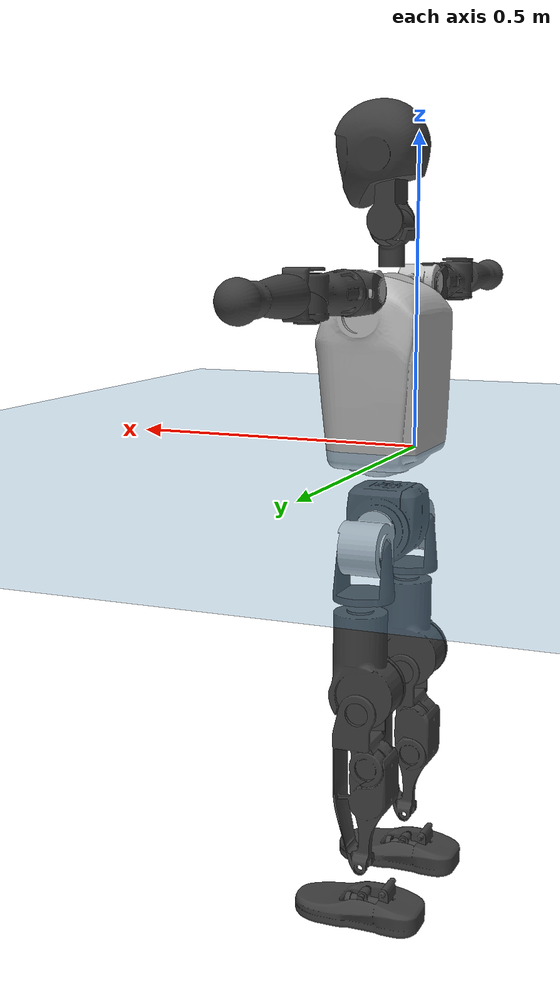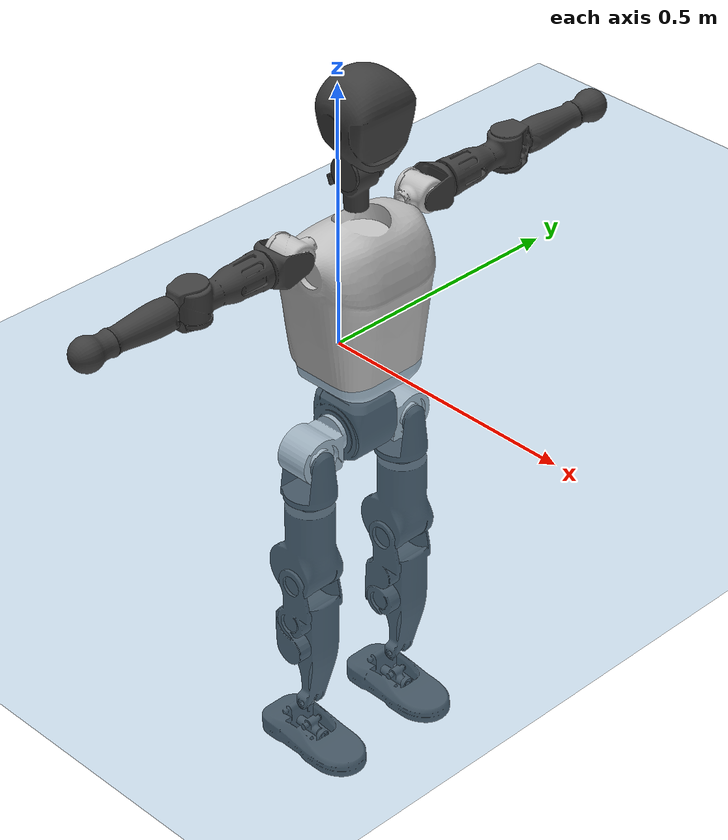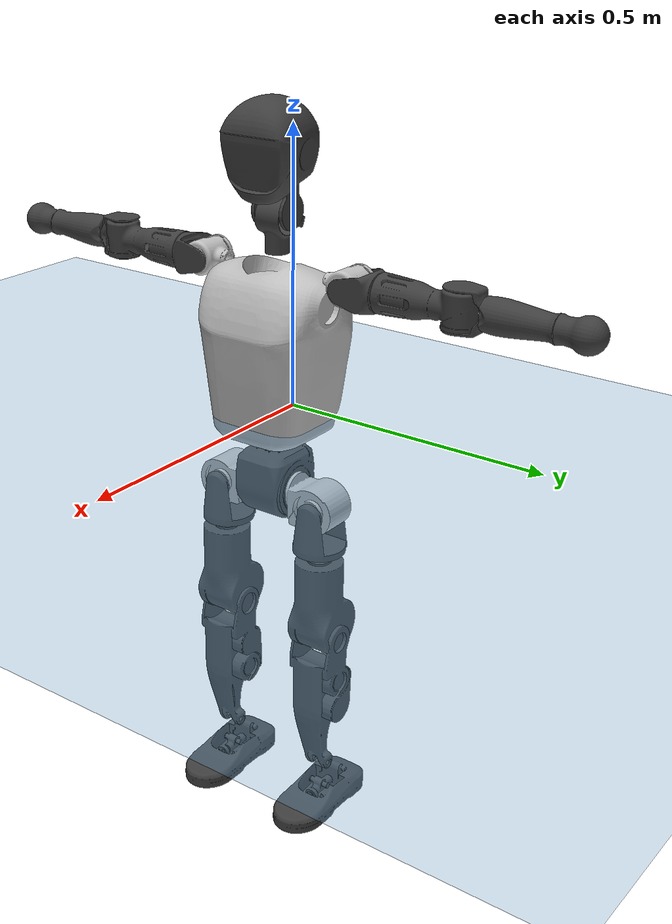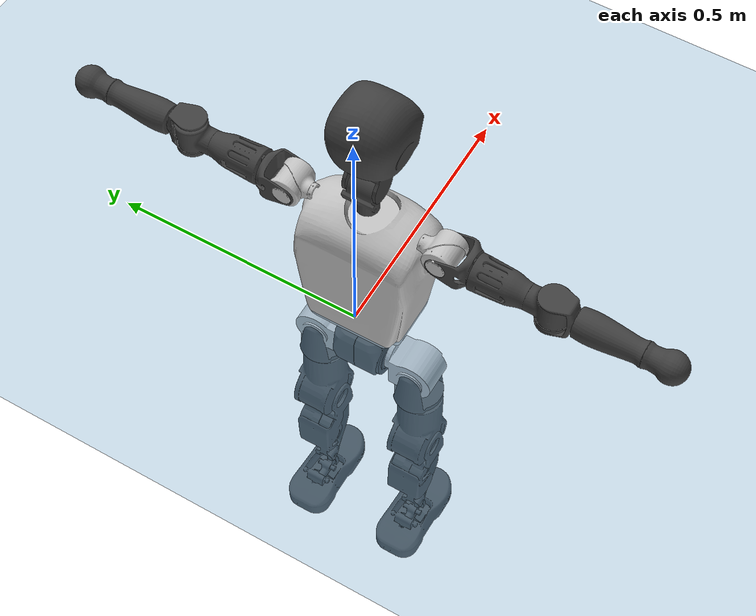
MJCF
<mujoco model="T1">
  <compiler angle="radian" assetdir="assets" balanceinertia="true" inertiafromgeom="false"/>

  <option timestep="0.005" density="1.2" viscosity="2e-05"/>

  <size nkey="1"/>

  <visual>
    <quality shadowsize="8192"/>
    <map shadowclip="0.5"/>
  </visual>

  <default>
    <default class="/">
      <joint armature="0.01" damping="0.01" frictionloss="0.1"/>
      <geom contype="0" conaffinity="0" group="1" solref="-1000 -80"/>
      <site size="0.01 0.005 0.005" group="5"/>
      <general forcelimited="true" biastype="affine" gainprm="25" biasprm="0 -25 -0.6"/>
      <default class="t1">
        <geom rgba="0.25 0.25 0.25 1"/>
        <default class="visual">
          <geom type="mesh" group="2"/>
        </default>
        <default class="collision">
          <geom group="3"/>
        </default>
        <default class="foot">
          <geom size="0.1115 0.05 0.015" type="box" condim="6" group="4" priority="1" solimp="0.015 1 0.015"/>
        </default>
        <default class="reward_collision_sphere">
          <geom group="5" rgba="1 0 0 1"/>
        </default>
      </default>
    </default>
  </default>

  <asset>
    <texture type="skybox" colorspace="auto" name="//unnamed_texture_0" builtin="gradient" rgb1="0.95 0.95 0.95" rgb2="0.95 0.95 0.95" width="100" height="600"/>
    <texture type="2d" colorspace="auto" name="texplane" builtin="checker" rgb1="0.345 0.575 0.748" rgb2="0.345 0.575 0.748" markrgb="1 1 1" width="512" height="512"/>
    <material name="MatPlane" class="/" texture="texplane" texuniform="true" texrepeat="2 2" specular="0.9"/>
    <mesh name="Trunk" class="/" file="Trunk.stl"/>
    <mesh name="H1" class="/" file="H1.stl"/>
    <mesh name="H2" class="/" file="H2.stl"/>
    <mesh name="AL1" class="/" file="AL1.stl"/>
    <mesh name="AL2" class="/" file="AL2.stl"/>
    <mesh name="AL3" class="/" file="AL3.stl"/>
    <mesh name="left_hand_link" class="/" file="left_hand_link.stl"/>
    <mesh name="AR1" class="/" file="AR1.stl"/>
    <mesh name="AR2" class="/" file="AR2.stl"/>
    <mesh name="AR3" class="/" file="AR3.stl"/>
    <mesh name="right_hand_link" class="/" file="right_hand_link.stl"/>
    <mesh name="Waist" class="/" file="Waist.stl"/>
    <mesh name="Hip_Pitch_Left" class="/" file="Hip_Pitch_Left.stl"/>
    <mesh name="Hip_Roll_Left" class="/" file="Hip_Roll_Left.stl"/>
    <mesh name="Hip_Yaw_Left" class="/" file="Hip_Yaw_Left.stl"/>
    <mesh name="Shank_Left" class="/" file="Shank_Left.stl"/>
    <mesh name="Ankle_Cross_Left" class="/" file="Ankle_Cross_Left.stl"/>
    <mesh name="left_foot_link" class="/" file="left_foot_link.stl"/>
    <mesh name="Hip_Pitch_Right" class="/" file="Hip_Pitch_Right.stl"/>
    <mesh name="Hip_Roll_Right" class="/" file="Hip_Roll_Right.stl"/>
    <mesh name="Hip_Yaw_Right" class="/" file="Hip_Yaw_Right.stl"/>
    <mesh name="Shank_Right" class="/" file="Shank_Right.stl"/>
    <mesh name="Ankle_Cross_Right" class="/" file="Ankle_Cross_Right.stl"/>
    <mesh name="right_foot_link" class="/" file="right_foot_link.stl"/>
  </asset>

  <worldbody>
    <geom name="floor" class="/" size="100 100 0.125" type="plane" group="0" material="MatPlane"/>
    <light name="toplight_shadow" class="/" pos="0 0 5" dir="0.0990148 0.0990148 -0.990148" type="directional" ambient="0.04 0.04 0.04" diffuse="0.55 0.55 0.55" specular="0.12 0.12 0.12"/>
    <light name="toplight_fill" class="/" pos="0 0 5" dir="0.0990148 0.0990148 -0.990148" type="directional" castshadow="false" ambient="0.04 0.04 0.04" diffuse="0.3 0.3 0.3" specular="0.08 0.08 0.08"/>
    <body name="trunk" childclass="t1" pos="0.000300027 -0.00197354 -0.000394572" quat="0.999999 0.000548526 -0.00110985 -0.000114579">
      <inertial pos="0.0382968 -0.00362734 0.123525" quat="0.999943 0.00225571 -0.0103062 0.00162925" mass="10.4292" diaginertia="0.0223441 0.0679712 0.129078"/>
      <joint name="//unnamed_joint_0" type="free" armature="0" damping="0" frictionloss="0"/>
      <geom name="//unnamed_geom_1" class="visual" rgba="0.76 0.76 0.76 1" mesh="Trunk"/>
      <geom name="//unnamed_geom_2" class="collision" size="0.0731766 0.0975688 0.146353" pos="0.0452361 0 0.142905" type="box"/>
      <geom name="//unnamed_geom_3" class="reward_collision_sphere" size="0.112204" pos="0.0452361 0 0.119088"/>
      <geom name="//unnamed_geom_4" class="reward_collision_sphere" size="0.0146353" pos="0.0452361 0.0834914 0"/>
      <geom name="//unnamed_geom_5" class="reward_collision_sphere" size="0.0146353" pos="0.0452361 -0.0834914 0"/>
      <geom name="//unnamed_geom_6" class="reward_collision_sphere" size="0.0146353" pos="0.0452361 0.105101 0.214358"/>
      <geom name="//unnamed_geom_7" class="reward_collision_sphere" size="0.0146353" pos="0.0452361 -0.105101 0.214358"/>
      <site name="imu" pos="0.0136097 -0.00240899 -0.0136351" size="0.00975688"/>
      <camera name="track" pos="0 -1.9645 0" quat="0.707107 0.707107 0 0" mode="trackcom"/>
      <camera name="ego_camera" pos="0.09198 0 0.500169" quat="-0.5 -0.5 0.5 0.5"/>
      <body name="H1" pos="0.0442838 0.00150033 0.289974" quat="1 -0.000500421 -6.62293e-05 0.000232683">
        <inertial pos="-0.00380699 0.000747247 0.0700392" quat="0.769723 -0.014235 -0.00707673 0.638181" mass="0.417126" diaginertia="5.94832e-05 0.000201993 0.000339476"/>
        <joint name="AAHead_yaw" pos="0 0 0" axis="0.0107337 -0.00541641 0.999928" stiffness="0.00693408" range="-1.57382 1.58906" armature="0.00851617" damping="0.0106139" frictionloss="0.0972107"/>
        <geom name="//unnamed_geom_8" class="visual" mesh="H1"/>
        <body name="H2" pos="0.00170772 0.0022391 0.0725805" quat="1 0.000375307 -3.88935e-05 0.000229795">
          <inertial pos="0.00727948 0.00347919 0.118086" quat="0.988543 0.102472 -0.0754136 -0.0812111" mass="0.591835" diaginertia="0.000517919 0.00178267 0.0041528"/>
          <joint name="Head_pitch" pos="0 0 0" axis="0.00180984 -0.999976 0.00670392" stiffness="0.000800014" range="-1.22676 0.34874" armature="0.00858307" damping="0.0108409" frictionloss="0.106092"/>
          <geom name="//unnamed_geom_9" class="visual" mesh="H2"/>
          <geom name="//unnamed_geom_10" class="collision" size="0.0780551" pos="0.00753935 0 0.130997"/>
          <geom name="//unnamed_geom_11" class="reward_collision_sphere" size="0.0878119" pos="0.0150787 0 0.119088"/>
        </body>
      </body>
      <body name="AL1" pos="0.043442 0.105298 0.258794" quat="1 -2.35196e-05 0.000244127 0.000111716">
        <inertial pos="-0.00302733 0.0428327 1.12108e-05" quat="0.505275 0.499227 -0.501644 0.493784" mass="0.494959" diaginertia="0.000339289 0.00119998 0.000684614"/>
        <joint name="Left_Shoulder_Pitch" pos="0 0 0" axis="0.00056405 0.999927 -0.0120847" stiffness="0.00246546" range="-3.29586 1.18223" armature="0.0102027" damping="0.0100326" frictionloss="0.0999821"/>
        <geom name="//unnamed_geom_12" class="visual" rgba="0.76 0.76 0.76 1" mesh="AL1"/>
        <body name="AL2" pos="-4.76255e-05 0.0458777 -0.00285074" quat="1 0.000130325 8.92161e-05 0.000189146">
          <inertial pos="0.00484911 0.0352729 -0.00304036" quat="0.488465 0.509345 -0.498857 0.503101" mass="0.14517" diaginertia="9.73751e-05 0.000315988 0.000415467"/>
          <joint name="Left_Shoulder_Roll" pos="0 0 0" axis="-0.999959 -0.00908232 -0.000615378" range="-1.5751 1.71837" armature="0.00965031" damping="0.00475142" frictionloss="0.0951454"/>
          <geom name="//unnamed_geom_13" class="visual" mesh="AL2"/>
          <body name="AL3" pos="0.00125852 0.0604517 0.0019162" quat="1 -2.01065e-05 3.89086e-07 -1.17457e-05">
            <inertial pos="-0.00303117 0.0836381 -0.000772885" quat="0.703999 0.710114 0.00613141 -0.00925083" mass="0.96435" diaginertia="0.00324378 0.0117823 0.00147009"/>
            <joint name="Left_Elbow_Pitch" pos="0 0 0" axis="-0.0020051 -0.999998 0.000710723" range="-2.28285 2.28871" armature="0.00963983" damping="0.0186138" frictionloss="0.108313"/>
            <geom name="//unnamed_geom_14" class="visual" mesh="AL3"/>
            <geom name="//unnamed_geom_15" class="collision" size="0.0292706 0.0731766" pos="0 0.0491126 0" quat="0.707105 0.707108 0 0" type="cylinder"/>
            <geom name="//unnamed_geom_16" class="reward_collision_sphere" size="0.0351248"/>
            <body name="left_hand_link" pos="0.00298079 0.147444 0.0033292" quat="1 -0.000145171 -0.000177653 0.000390624">
              <inertial pos="0.00241634 0.10494 -0.00229435" quat="0.708145 0.706063 0.00115591 0.00222098" mass="0.303564" diaginertia="0.00198724 0.00756317 0.000531835"/>
              <joint name="Left_Elbow_Yaw" pos="0 0 0" axis="0.00753679 0.00369284 0.999965" range="-2.42899 0.00819539" armature="0.0111109" damping="0.0209747" frictionloss="0.0980018"/>
              <geom name="//unnamed_geom_17" class="visual" mesh="left_hand_link"/>
              <geom name="//unnamed_geom_18" class="collision" size="0.0292706 0.0853727" pos="0 0.127693 0" quat="0.707105 0.707108 0 0" type="cylinder"/>
              <geom name="//unnamed_geom_19" class="reward_collision_sphere" size="0.0487844"/>
              <geom name="//unnamed_geom_20" class="reward_collision_sphere" size="0.0341491" pos="0 0.108048 0"/>
              <geom name="//unnamed_geom_21" class="reward_collision_sphere" size="0.0341491" pos="0 0.211184 0"/>
            </body>
          </body>
        </body>
      </body>
      <body name="AR1" pos="0.0447623 -0.102296 0.260468" quat="1 0.000407805 0.000365952 -0.000708327">
        <inertial pos="0.000261499 -0.0459024 0.00152412" quat="0.503958 0.494113 -0.505612 0.49622" mass="0.50492" diaginertia="0.000330841 0.00122906 0.000723208"/>
        <joint name="Right_Shoulder_Pitch" pos="0 0 0" axis="-4.17083e-06 -1 3.48839e-06" stiffness="0.00100451" range="-1.17543 3.31699" armature="0.00947985" damping="0.0154566" frictionloss="0.0899046"/>
        <geom name="//unnamed_geom_22" class="visual" rgba="0.76 0.76 0.76 1" mesh="AR1"/>
        <body name="AR2" pos="0.000162903 -0.0469493 -0.00255375" quat="0.999999 9.41023e-05 -0.00150861 0.000135607">
          <inertial pos="0.00165539 -0.0365525 0.000505154" quat="0.516807 0.476579 -0.512122 0.493471" mass="0.143677" diaginertia="9.42485e-05 0.000313146 0.000406438"/>
          <joint name="Right_Shoulder_Roll" pos="0 0 0" axis="-0.999994 0.00287773 -0.00200056" range="-1.77278 1.53634" armature="0.00982325" damping="0" frictionloss="0.102801"/>
          <geom name="//unnamed_geom_23" class="visual" mesh="AR2"/>
          <body name="AR3" pos="-0.00328124 -0.0591497 0.000440899" quat="0.999999 0.00111716 0.000654818 0.00043084">
            <inertial pos="0.00144674 -0.0844337 0.00160205" quat="0.706659 0.707544 0.000901989 -0.00366563" mass="0.942755" diaginertia="0.00317166 0.0116964 0.00147146"/>
            <joint name="Right_Elbow_Pitch" pos="0 0 0" axis="0.00193915 0.999941 -0.0106958" range="-2.29141 2.23769" armature="0.00991411" damping="0.00566561" frictionloss="0.106887"/>
            <geom name="//unnamed_geom_24" class="visual" mesh="AR3"/>
            <geom name="//unnamed_geom_25" class="collision" size="0.0292706 0.0731766" pos="0 -0.0491126 0" quat="0.707105 0.707108 0 0" type="cylinder"/>
            <geom name="//unnamed_geom_26" class="reward_collision_sphere" size="0.0351248"/>
            <body name="right_hand_link" pos="-0.00339605 -0.14698 0.00226868" quat="0.999999 -0.00120791 -0.000791451 -0.000306742">
              <inertial pos="0.00171454 -0.106679 -0.00182408" quat="0.70492 0.709286 -0.000315102 0.000769615" mass="0.297309" diaginertia="0.00189907 0.00701975 0.000517908"/>
              <joint name="Right_Elbow_Yaw" pos="0 0 0" axis="0.000443915 -0.000102653 1" range="0.00510828 2.38286" armature="0.00934589" damping="0.00770735" frictionloss="0.0966634"/>
              <geom name="//unnamed_geom_27" class="visual" mesh="right_hand_link"/>
              <geom name="//unnamed_geom_28" class="collision" size="0.0292706 0.0853727" pos="0 -0.127693 0" quat="0.707105 0.707108 0 0" type="cylinder"/>
              <geom name="//unnamed_geom_29" class="reward_collision_sphere" size="0.0487844"/>
              <geom name="//unnamed_geom_30" class="reward_collision_sphere" size="0.0341491" pos="0 -0.108048 0"/>
              <geom name="//unnamed_geom_31" class="reward_collision_sphere" size="0.0341491" pos="0 -0.211184 0"/>
            </body>
          </body>
        </body>
      </body>
      <body name="Waist" pos="0.0452735 -0.00247188 -0.135233" quat="1 1.09144e-05 -0.000149683 -0.000104259">
        <inertial pos="0.00167296 0.00223489 0.00974701" quat="0.982439 -0.0118658 -0.186206 0.000496281" mass="2.24108" diaginertia="0.00126335 0.00456198 0.0106166"/>
        <joint name="Waist" pos="0 0 0" axis="0.00210146 -0.00247264 0.999995" range="-1.6038 1.54387" armature="0.0092002" damping="0.00281339" frictionloss="0.109126"/>
        <geom name="//unnamed_geom_32" class="visual" mesh="Waist"/>
        <body name="Hip_Pitch_Left" pos="0.00413562 0.10289 -0.00099676" quat="1 0.000121204 5.76649e-05 0.000176795">
          <inertial pos="-0.000439905 -0.00814733 -0.0243212" quat="0.975068 0.221385 0.0141861 0.00548961" mass="0.916454" diaginertia="0.000430525 0.00130372 0.00292612"/>
          <joint name="Left_Hip_Pitch" pos="0 0 0" axis="0.00108573 0.999907 0.0136078" stiffness="0.0160147" range="-1.81613 1.62706" armature="0.00979759" damping="0" frictionloss="0.0991823"/>
          <geom name="//unnamed_geom_33" class="visual" rgba="0.76 0.76 0.76 1" mesh="Hip_Pitch_Left"/>
          <body name="Hip_Roll_Left" pos="0.0026978 0.00158096 -0.0269122" quat="1 -2.61345e-08 -1.2413e-08 7.21477e-08">
            <inertial pos="0.00186415 -0.00105377 -0.0667428" quat="0.709965 -0.00922749 -0.00482409 0.70416" mass="0.364647" diaginertia="0.000451609 0.00138736 0.0012403"/>
            <joint name="Left_Hip_Roll" pos="0 0 0" axis="-0.999943 -0.000540724 0.0106218" range="-1.59591 0.251496" armature="0.00914659" damping="0.0141123" frictionloss="0.0923811"/>
            <geom name="//unnamed_geom_34" class="visual" mesh="Hip_Roll_Left"/>
            <geom name="//unnamed_geom_35" class="reward_collision_sphere" size="0.0536629"/>
            <body name="Hip_Yaw_Left" pos="0.00185808 0.00222785 -0.097022" quat="1 1.68768e-05 0.000191805 -0.000171308">
              <inertial pos="-0.00712808 -0.000546277 -0.105739" quat="0.698923 -0.0205757 -0.03318 0.714131" mass="1.98864" diaginertia="0.00646726 0.0230339 0.00651486"/>
              <joint name="Left_Hip_Yaw" pos="0 0 0" axis="1.42971e-05 0.000122968 -1" range="-0.983823 1.03997" armature="0.0109945" damping="0.00564398" frictionloss="0.0989411"/>
              <geom name="//unnamed_geom_36" class="visual" mesh="Hip_Yaw_Left"/>
              <geom name="//unnamed_geom_37" class="collision" size="0.0487844 0.0780551" type="cylinder"/>
              <body name="Shank_Left" pos="-0.00956109 -7.47484e-05 -0.162218" quat="1 0.000250247 -0.000306155 0.000832517">
                <inertial pos="-0.00348411 2.31294e-05 -0.150833" quat="0.997707 -0.0003065 -0.0252755 0.0627839" mass="1.60126" diaginertia="0.00843895 0.0303429 0.00417267"/>
                <joint name="Left_Knee_Pitch" pos="0 0 0" axis="0.00200069 0.999995 -0.00252678" stiffness="0.00785469" range="0.0468765 2.33143" armature="0.00979308" damping="0.00337747" frictionloss="0.0965799"/>
                <geom name="//unnamed_geom_38" class="visual" mesh="Shank_Left"/>
                <geom name="//unnamed_geom_39" class="collision" size="0.0487844 0.0731766" pos="0 0 -0.142905" type="cylinder"/>
                <geom name="//unnamed_geom_40" class="reward_collision_sphere" size="0.0634197"/>
                <body name="Ankle_Cross_Left" pos="-0.00166689 -0.00108318 -0.336322" quat="1 -8.24581e-05 -7.00147e-05 -8.84192e-05">
                  <inertial pos="-0.00510564 0.00252148 -0.00989525" quat="0.442889 0.551117 0.55206 0.441984" mass="0.0656487" diaginertia="7.27403e-06 2.28618e-05 2.73281e-05"/>
                  <joint name="Left_Ankle_Pitch" pos="0 0 0" axis="-0.0101287 0.999915 0.00826652" stiffness="0.00374468" range="-0.923778 0.340272" armature="0.00839662" damping="0.0148186" frictionloss="0.108978"/>
                  <geom name="//unnamed_geom_41" class="visual" mesh="Ankle_Cross_Left"/>
                  <body name="left_foot_link" pos="-0.000641559 0.00176243 -0.0126367" quat="0.999999 0.000588512 -0.000790004 -0.000524226">
                    <inertial pos="-0.00257463 0.000769068 -0.0118531" quat="0.00947809 0.619325 -0.00520818 0.78506" mass="0.6214" diaginertia="0.000682025 0.00218606 0.00546829"/>
                    <joint name="Left_Ankle_Roll" pos="0 0 0" axis="-0.999986 -0.00475122 -0.0021755" range="-0.493485 0.392247" armature="0.0109523" damping="0.0190437" frictionloss="0.085206"/>
                    <geom name="//unnamed_geom_42" class="visual" mesh="left_foot_link"/>
                    <geom name="left_foot" class="foot" size="0.105449 0.0447531 0.0154716" pos="0.00753935 0 -0.0178632"/>
                    <geom name="//unnamed_geom_44" class="reward_collision_sphere" size="0.0507358" pos="0.00753935 0 -0.0178632"/>
                    <geom name="//unnamed_geom_45" class="reward_collision_sphere" size="0.0292706" pos="0.0716238 -0.0225918 -0.0178632"/>
                    <geom name="//unnamed_geom_46" class="reward_collision_sphere" size="0.0292706" pos="-0.0527754 -0.0225918 -0.0178632"/>
                    <site name="left_foot" class="foot" pos="0.00753935 0 -0.0178632" size="0.00975688"/>
                  </body>
                </body>
              </body>
            </body>
          </body>
        </body>
        <body name="Hip_Pitch_Right" pos="-0.00113938 -0.107153 0.000735455" quat="0.999999 -0.000459843 0.000629799 -0.00082252">
          <inertial pos="0.0014353 0.00468472 -0.0187606" quat="0.973805 -0.22652 0.0182748 -0.00761942" mass="0.947432" diaginertia="0.000446811 0.00138379 0.00312149"/>
          <joint name="Right_Hip_Pitch" pos="0 0 0" axis="-0.00058802 -1 0.00017054" range="-1.58888 1.78595" armature="0.0112027" damping="0.00640342" frictionloss="0.0907708"/>
          <geom name="//unnamed_geom_47" class="visual" rgba="0.76 0.76 0.76 1" mesh="Hip_Pitch_Right"/>
          <body name="Hip_Roll_Right" pos="0.00195707 -0.00255624 -0.0257387" quat="1 3.236e-05 -0.000106814 5.74351e-05">
            <inertial pos="0.00167674 0.000866913 -0.0611014" quat="0.707097 -0.00607957 -0.00393453 0.707079" mass="0.379342" diaginertia="0.000436596 0.00147793 0.00126048"/>
            <joint name="Right_Hip_Roll" pos="0 0 0" axis="-0.99992 0.0126282 0.000973117" stiffness="0.00762223" range="-0.202932 1.53073" armature="0.00918868" damping="0" frictionloss="0.0862686"/>
            <geom name="//unnamed_geom_48" class="visual" mesh="Hip_Roll_Right"/>
            <geom name="//unnamed_geom_49" class="reward_collision_sphere" size="0.0536629"/>
            <body name="Hip_Yaw_Right" pos="0.00232201 -0.0032467 -0.0954847" quat="0.999999 -0.000700174 -0.000283195 0.000683594">
              <inertial pos="-0.00400505 -0.00329246 -0.103781" quat="0.713957 -0.0321477 -0.0246736 0.699016" mass="2.04542" diaginertia="0.00610631 0.0238267 0.00604"/>
              <joint name="Right_Hip_Yaw" pos="0 0 0" axis="-0.00480825 -0.00589368 -0.999971" stiffness="0.0129055" range="-1.01548 0.995938" armature="0.00830217" damping="0.0172935" frictionloss="0.093149"/>
              <geom name="//unnamed_geom_50" class="visual" mesh="Hip_Yaw_Right"/>
              <geom name="//unnamed_geom_51" class="collision" size="0.0487844 0.0780551" type="cylinder"/>
              <body name="Shank_Right" pos="-0.00829954 0.00203623 -0.161096" quat="0.999999 -0.00026718 0.00117007 -0.000745463">
                <inertial pos="-0.0026898 -0.00123578 -0.146614" quat="0.999328 -0.00498577 -0.01287 -0.0339549" mass="1.6056" diaginertia="0.00873784 0.0312898 0.00478376"/>
                <joint name="Right_Knee_Pitch" pos="0 0 0" axis="0.000141951 -1 -0.000776683" range="-2.3483 0.0515896" armature="0.00966736" damping="0.0214074" frictionloss="0.100447"/>
                <geom name="//unnamed_geom_52" class="visual" mesh="Shank_Right"/>
                <geom name="//unnamed_geom_53" class="collision" size="0.0487844 0.0731766" pos="0 0 -0.142905" type="cylinder"/>
                <geom name="//unnamed_geom_54" class="reward_collision_sphere" size="0.0634197"/>
                <body name="Ankle_Cross_Right" pos="0.00286982 0.00120601 -0.334985" quat="0.999999 0.000274571 0.00108226 -0.000701152">
                  <inertial pos="-0.00164199 0.00302985 -0.00967761" quat="0.443438 0.550919 0.551235 0.442709" mass="0.0679673" diaginertia="6.92901e-06 2.35858e-05 2.62415e-05"/>
                  <joint name="Right_Ankle_Pitch" pos="0 0 0" axis="-0.0120829 -0.999923 0.00281973" stiffness="0.000781411" range="-0.383801 0.864298" armature="0.00935051" damping="0.00853011" frictionloss="0.102548"/>
                  <geom name="//unnamed_geom_55" class="visual" mesh="Ankle_Cross_Right"/>
                  <body name="right_foot_link" pos="0.00338051 -0.00136743 -0.0127026" quat="1 2.68339e-05 -4.26632e-05 1.15874e-05">
                    <inertial pos="-3.15497e-06 0.00269276 -0.0112157" quat="-0.00815869 0.617348 0.00258375 0.786644" mass="0.672131" diaginertia="0.00068246 0.00224844 0.00546664"/>
                    <joint name="Right_Ankle_Roll" pos="0 0 0" axis="-0.999997 -0.00124937 0.00201733" stiffness="0.000842293" range="-0.42213 0.392693" armature="0.00950424" damping="0.00630208" frictionloss="0.0869724"/>
                    <geom name="//unnamed_geom_56" class="visual" mesh="right_foot_link"/>
                    <geom name="right_foot" class="foot" size="0.0982215 0.0492671 0.0152606" pos="0.00753935 0 -0.0178632"/>
                    <geom name="//unnamed_geom_58" class="reward_collision_sphere" size="0.0390275"/>
                    <geom name="//unnamed_geom_59" class="reward_collision_sphere" size="0.0292706" pos="0.00753935 0 -0.0178632"/>
                    <geom name="//unnamed_geom_60" class="reward_collision_sphere" size="0.0292706" pos="0.0716238 0.0225918 -0.0178632"/>
                    <geom name="//unnamed_geom_61" class="reward_collision_sphere" size="0.0292706" pos="-0.0527754 0.0225918 -0.0178632"/>
                    <site name="right_foot" class="foot" pos="0.00753935 0 -0.0178632" size="0.00975688"/>
                  </body>
                </body>
              </body>
            </body>
          </body>
        </body>
      </body>
    </body>
  </worldbody>

  <contact>
    <pair class="/" geom1="floor" geom2="left_foot" name="//unnamed_contact_0"/>
    <pair class="/" geom1="floor" geom2="right_foot" name="//unnamed_contact_1"/>
  </contact>

  <actuator>
    <general name="AAHead_yaw" class="/" joint="AAHead_yaw" forcerange="-6.74383 6.74383" gainprm="23.0417" biasprm="0 -23.0417 -0.605363"/>
    <general name="Head_pitch" class="/" joint="Head_pitch" forcerange="-6.92928 6.92928" gainprm="23.0417" biasprm="0 -23.0417 -0.605363"/>
    <general name="Left_Shoulder_Pitch" class="/" joint="Left_Shoulder_Pitch" forcerange="-16.4032 16.4032" gainprm="23.0417" biasprm="0 -23.0417 -0.605363"/>
    <general name="Left_Shoulder_Roll" class="/" joint="Left_Shoulder_Roll" forcerange="-17.1247 17.1247" gainprm="23.0417" biasprm="0 -23.0417 -0.605363"/>
    <general name="Left_Elbow_Pitch" class="/" joint="Left_Elbow_Pitch" forcerange="-16.3928 16.3928" gainprm="23.0417" biasprm="0 -23.0417 -0.605363"/>
    <general name="Left_Elbow_Yaw" class="/" joint="Left_Elbow_Yaw" forcerange="-17.4101 17.4101" gainprm="23.0417" biasprm="0 -23.0417 -0.605363"/>
    <general name="Right_Shoulder_Pitch" class="/" joint="Right_Shoulder_Pitch" forcerange="-18.1368 18.1368" gainprm="23.0417" biasprm="0 -23.0417 -0.605363"/>
    <general name="Right_Shoulder_Roll" class="/" joint="Right_Shoulder_Roll" forcerange="-17.6121 17.6121" gainprm="23.0417" biasprm="0 -23.0417 -0.605363"/>
    <general name="Right_Elbow_Pitch" class="/" joint="Right_Elbow_Pitch" forcerange="-16.1352 16.1352" gainprm="23.0417" biasprm="0 -23.0417 -0.605363"/>
    <general name="Right_Elbow_Yaw" class="/" joint="Right_Elbow_Yaw" forcerange="-16.043 16.043" gainprm="23.0417" biasprm="0 -23.0417 -0.605363"/>
    <general name="Waist" class="/" joint="Waist" forcerange="-27.1198 27.1198" gainprm="23.0417" biasprm="0 -23.0417 -0.605363"/>
    <general name="Left_Hip_Pitch" class="/" joint="Left_Hip_Pitch" forcerange="-45.0327 45.0327" gainprm="23.0417" biasprm="0 -23.0417 -0.605363"/>
    <general name="Left_Hip_Roll" class="/" joint="Left_Hip_Roll" forcerange="-27.0655 27.0655" gainprm="23.0417" biasprm="0 -23.0417 -0.605363"/>
    <general name="Left_Hip_Yaw" class="/" joint="Left_Hip_Yaw" forcerange="-27.0348 27.0348" gainprm="23.0417" biasprm="0 -23.0417 -0.605363"/>
    <general name="Left_Knee_Pitch" class="/" joint="Left_Knee_Pitch" forcerange="-60.7263 60.7263" gainprm="23.0417" biasprm="0 -23.0417 -0.605363"/>
    <general name="Left_Ankle_Pitch" class="/" joint="Left_Ankle_Pitch" forcerange="-21.2028 21.2028" gainprm="23.0417" biasprm="0 -23.0417 -0.605363"/>
    <general name="Left_Ankle_Roll" class="/" joint="Left_Ankle_Roll" forcerange="-13.1856 13.1856" gainprm="23.0417" biasprm="0 -23.0417 -0.605363"/>
    <general name="Right_Hip_Pitch" class="/" joint="Right_Hip_Pitch" forcerange="-43.528 43.528" gainprm="23.0417" biasprm="0 -23.0417 -0.605363"/>
    <general name="Right_Hip_Roll" class="/" joint="Right_Hip_Roll" forcerange="-32.1119 32.1119" gainprm="23.0417" biasprm="0 -23.0417 -0.605363"/>
    <general name="Right_Hip_Yaw" class="/" joint="Right_Hip_Yaw" forcerange="-26.219 26.219" gainprm="23.0417" biasprm="0 -23.0417 -0.605363"/>
    <general name="Right_Knee_Pitch" class="/" joint="Right_Knee_Pitch" forcerange="-52.511 52.511" gainprm="23.0417" biasprm="0 -23.0417 -0.605363"/>
    <general name="Right_Ankle_Pitch" class="/" joint="Right_Ankle_Pitch" forcerange="-19.7171 19.7171" gainprm="23.0417" biasprm="0 -23.0417 -0.605363"/>
    <general name="Right_Ankle_Roll" class="/" joint="Right_Ankle_Roll" forcerange="-16.1728 16.1728" gainprm="23.0417" biasprm="0 -23.0417 -0.605363"/>
  </actuator>

  <sensor>
    <gyro site="imu" name="imu_angular_velocity"/>
    <velocimeter site="imu" name="imu_linear_velocity"/>
    <framelinvel objtype="site" objname="left_foot" name="left_foot_global_linear_velocity"/>
    <framelinvel objtype="site" objname="right_foot" name="right_foot_global_linear_velocity"/>
  </sensor>

  <keyframe>
    <key name="home" qpos="0 0 0.6385 1 0 0 0 0 0 0 1.4 0 -0.4 0 -1.4 0 0.4 0 -0.4 0 0 0.8 -0.4 0 0.4 0 0 -0.8 0.4 0"/>
  </keyframe>
</mujoco>
